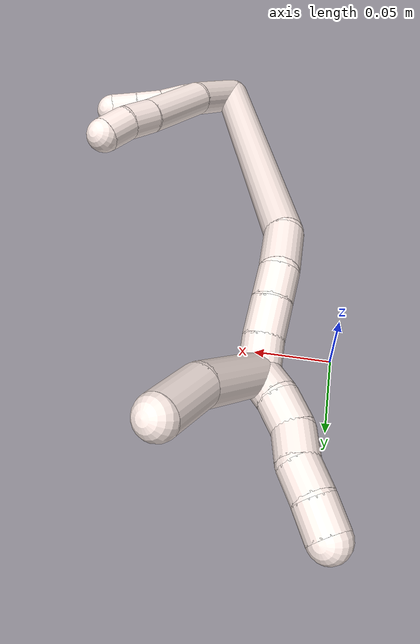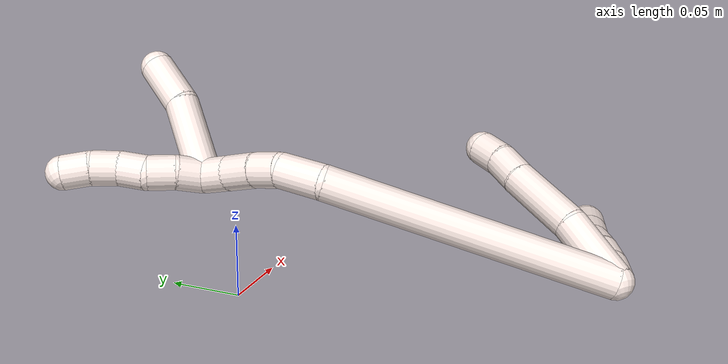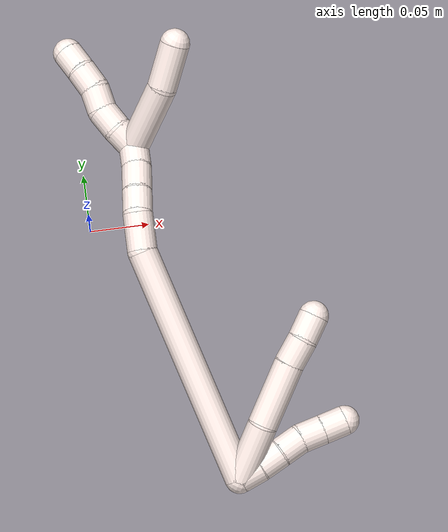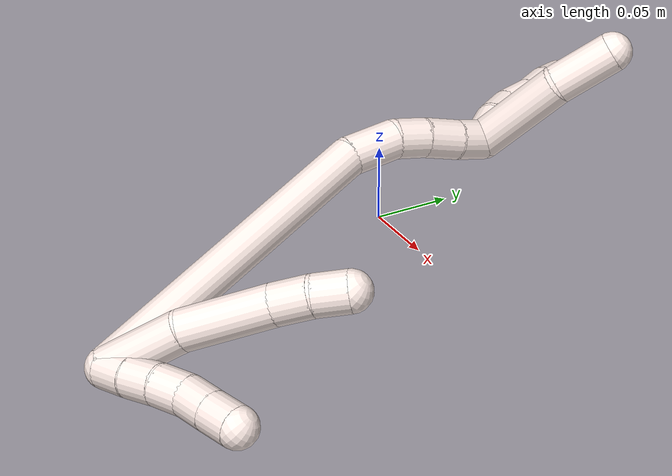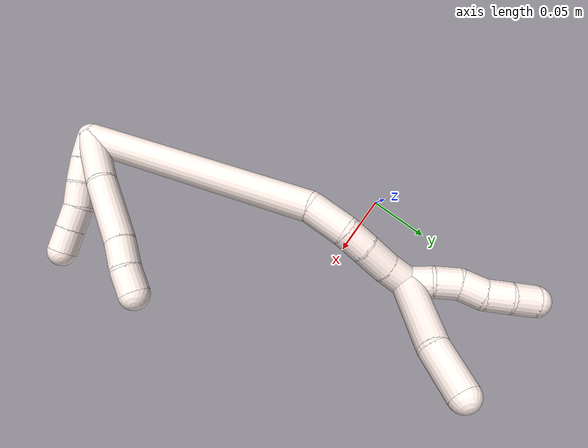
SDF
<sdf version="1.7">
 <world name="default">
  <model name="11">
   <static>0</static>
   <link name="11">
    <collision name="collision-cylinder-e_1_2_8">
     <pose>0.003539 0.006073 0.024458 -0.24337 0.139531 -0.01709</pose>
     <geometry><cylinder><radius>0.0125</radius><length>0.050897</length></cylinder></geometry>
     <surface>
      <friction><ode><mu>1.16</mu><mu2>1.16</mu2><slip1>0</slip1><slip2>0</slip2></ode></friction>
      <contact><ode><kp>1e+06</kp><kd>1</kd><max_vel>0</max_vel><min_depth>0.001</min_depth></ode></contact>
     </surface>
    </collision>
    <visual name="visual-cylinder-e_1_2_8">
     <pose>0.003539 0.006073 0.024458 -0.24337 0.139531 -0.01709</pose>
     <geometry><cylinder><radius>0.0125</radius><length>0.050897</length></cylinder></geometry>
     <material><ambient>1 0.933333 0.909804 1</ambient></material>
    </visual>
    <collision name="collision-cylinder-e_2_8_9">
     <pose>0.014576 0.022332 0.073317 -0.395477 0.276304 -0.0557</pose>
     <geometry><cylinder><radius>0.0125</radius><length>0.054968</length></cylinder></geometry>
     <surface>
      <friction><ode><mu>1.16</mu><mu2>1.16</mu2><slip1>0</slip1><slip2>0</slip2></ode></friction>
      <contact><ode><kp>1e+06</kp><kd>1</kd><max_vel>0</max_vel><min_depth>0.001</min_depth></ode></contact>
     </surface>
    </collision>
    <visual name="visual-cylinder-e_2_8_9">
     <pose>0.014576 0.022332 0.073317 -0.395477 0.276304 -0.0557</pose>
     <geometry><cylinder><radius>0.0125</radius><length>0.054968</length></cylinder></geometry>
     <material><ambient>1 0.933333 0.909804 1</ambient></material>
    </visual>
    <collision name="collision-cylinder-e_3_9_10">
     <pose>0.025933 0.035944 0.107973 -0.32234 0.342859 -0.05628</pose>
     <geometry><cylinder><radius>0.0125</radius><length>0.02296</length></cylinder></geometry>
     <surface>
      <friction><ode><mu>1.16</mu><mu2>1.16</mu2><slip1>0</slip1><slip2>0</slip2></ode></friction>
      <contact><ode><kp>1e+06</kp><kd>1</kd><max_vel>0</max_vel><min_depth>0.001</min_depth></ode></contact>
     </surface>
    </collision>
    <visual name="visual-cylinder-e_3_9_10">
     <pose>0.025933 0.035944 0.107973 -0.32234 0.342859 -0.05628</pose>
     <geometry><cylinder><radius>0.0125</radius><length>0.02296</length></cylinder></geometry>
     <material><ambient>1 0.933333 0.909804 1</ambient></material>
    </visual>
    <collision name="collision-cylinder-e_4_10_6">
     <pose>0.033894 0.044121 0.126754 -0.508495 0.397807 -0.104668</pose>
     <geometry><cylinder><radius>0.0125</radius><length>0.021175</length></cylinder></geometry>
     <surface>
      <friction><ode><mu>1.16</mu><mu2>1.16</mu2><slip1>0</slip1><slip2>0</slip2></ode></friction>
      <contact><ode><kp>1e+06</kp><kd>1</kd><max_vel>0</max_vel><min_depth>0.001</min_depth></ode></contact>
     </surface>
    </collision>
    <visual name="visual-cylinder-e_4_10_6">
     <pose>0.033894 0.044121 0.126754 -0.508495 0.397807 -0.104668</pose>
     <geometry><cylinder><radius>0.0125</radius><length>0.021175</length></cylinder></geometry>
     <material><ambient>1 0.933333 0.909804 1</ambient></material>
    </visual>
    <collision name="collision-cylinder-e_1_2_11">
     <pose>0.007244 -0.000424 0.006881 0.061566 0.810145 0.026405</pose>
     <geometry><cylinder><radius>0.0125</radius><length>0.02</length></cylinder></geometry>
     <surface>
      <friction><ode><mu>1.16</mu><mu2>1.16</mu2><slip1>0</slip1><slip2>0</slip2></ode></friction>
      <contact><ode><kp>1e+06</kp><kd>1</kd><max_vel>0</max_vel><min_depth>0.001</min_depth></ode></contact>
     </surface>
    </collision>
    <visual name="visual-cylinder-e_1_2_11">
     <pose>0.007244 -0.000424 0.006881 0.061566 0.810145 0.026405</pose>
     <geometry><cylinder><radius>0.0125</radius><length>0.02</length></cylinder></geometry>
     <material><ambient>1 0.933333 0.909804 1</ambient></material>
    </visual>
    <collision name="collision-cylinder-e_2_11_12">
     <pose>0.021515 -0.00036 0.020859 -0.068686 0.779251 -0.028213</pose>
     <geometry><cylinder><radius>0.0125</radius><length>0.02</length></cylinder></geometry>
     <surface>
      <friction><ode><mu>1.16</mu><mu2>1.16</mu2><slip1>0</slip1><slip2>0</slip2></ode></friction>
      <contact><ode><kp>1e+06</kp><kd>1</kd><max_vel>0</max_vel><min_depth>0.001</min_depth></ode></contact>
     </surface>
    </collision>
    <visual name="visual-cylinder-e_2_11_12">
     <pose>0.021515 -0.00036 0.020859 -0.068686 0.779251 -0.028213</pose>
     <geometry><cylinder><radius>0.0125</radius><length>0.02</length></cylinder></geometry>
     <material><ambient>1 0.933333 0.909804 1</ambient></material>
    </visual>
    <collision name="collision-cylinder-e_3_12_13">
     <pose>0.03612 0.001306 0.034375 -0.18153 0.859875 -0.083421</pose>
     <geometry><cylinder><radius>0.0125</radius><length>0.02</length></cylinder></geometry>
     <surface>
      <friction><ode><mu>1.16</mu><mu2>1.16</mu2><slip1>0</slip1><slip2>0</slip2></ode></friction>
      <contact><ode><kp>1e+06</kp><kd>1</kd><max_vel>0</max_vel><min_depth>0.001</min_depth></ode></contact>
     </surface>
    </collision>
    <visual name="visual-cylinder-e_3_12_13">
     <pose>0.03612 0.001306 0.034375 -0.18153 0.859875 -0.083421</pose>
     <geometry><cylinder><radius>0.0125</radius><length>0.02</length></cylinder></geometry>
     <material><ambient>1 0.933333 0.909804 1</ambient></material>
    </visual>
    <collision name="collision-cylinder-e_4_13_14">
     <pose>0.051994 0.001719 0.046325 0.137463 0.978339 0.073257</pose>
     <geometry><cylinder><radius>0.0125</radius><length>0.02</length></cylinder></geometry>
     <surface>
      <friction><ode><mu>1.16</mu><mu2>1.16</mu2><slip1>0</slip1><slip2>0</slip2></ode></friction>
      <contact><ode><kp>1e+06</kp><kd>1</kd><max_vel>0</max_vel><min_depth>0.001</min_depth></ode></contact>
     </surface>
    </collision>
    <visual name="visual-cylinder-e_4_13_14">
     <pose>0.051994 0.001719 0.046325 0.137463 0.978339 0.073257</pose>
     <geometry><cylinder><radius>0.0125</radius><length>0.02</length></cylinder></geometry>
     <material><ambient>1 0.933333 0.909804 1</ambient></material>
    </visual>
    <collision name="collision-cylinder-e_5_14_5">
     <pose>0.068475 0.000149 0.057543 0.140631 0.958896 0.073203</pose>
     <geometry><cylinder><radius>0.0125</radius><length>0.02</length></cylinder></geometry>
     <surface>
      <friction><ode><mu>1.16</mu><mu2>1.16</mu2><slip1>0</slip1><slip2>0</slip2></ode></friction>
      <contact><ode><kp>1e+06</kp><kd>1</kd><max_vel>0</max_vel><min_depth>0.001</min_depth></ode></contact>
     </surface>
    </collision>
    <visual name="visual-cylinder-e_5_14_5">
     <pose>0.068475 0.000149 0.057543 0.140631 0.958896 0.073203</pose>
     <geometry><cylinder><radius>0.0125</radius><length>0.02</length></cylinder></geometry>
     <material><ambient>1 0.933333 0.909804 1</ambient></material>
    </visual>
    <collision name="collision-cylinder-e_1_2_15">
     <pose>-0.035716 0.075169 0.058784 -0.907117 -0.358138 0.176009</pose>
     <geometry><cylinder><radius>0.0125</radius><length>0.20378</length></cylinder></geometry>
     <surface>
      <friction><ode><mu>1.16</mu><mu2>1.16</mu2><slip1>0</slip1><slip2>0</slip2></ode></friction>
      <contact><ode><kp>1e+06</kp><kd>1</kd><max_vel>0</max_vel><min_depth>0.001</min_depth></ode></contact>
     </surface>
    </collision>
    <visual name="visual-cylinder-e_1_2_15">
     <pose>-0.035716 0.075169 0.058784 -0.907117 -0.358138 0.176009</pose>
     <geometry><cylinder><radius>0.0125</radius><length>0.20378</length></cylinder></geometry>
     <material><ambient>1 0.933333 0.909804 1</ambient></material>
    </visual>
    <collision name="collision-cylinder-e_2_15_16">
     <pose>-0.071769 0.162758 0.127511 -0.89564 -0.02122 0.010194</pose>
     <geometry><cylinder><radius>0.0125</radius><length>0.031826</length></cylinder></geometry>
     <surface>
      <friction><ode><mu>1.16</mu><mu2>1.16</mu2><slip1>0</slip1><slip2>0</slip2></ode></friction>
      <contact><ode><kp>1e+06</kp><kd>1</kd><max_vel>0</max_vel><min_depth>0.001</min_depth></ode></contact>
     </surface>
    </collision>
    <visual name="visual-cylinder-e_2_15_16">
     <pose>-0.071769 0.162758 0.127511 -0.89564 -0.02122 0.010194</pose>
     <geometry><cylinder><radius>0.0125</radius><length>0.031826</length></cylinder></geometry>
     <material><ambient>1 0.933333 0.909804 1</ambient></material>
    </visual>
    <collision name="collision-cylinder-e_3_16_17">
     <pose>-0.069963 0.184017 0.142074 -1.08928 0.211708 -0.128547</pose>
     <geometry><cylinder><radius>0.0125</radius><length>0.020404</length></cylinder></geometry>
     <surface>
      <friction><ode><mu>1.16</mu><mu2>1.16</mu2><slip1>0</slip1><slip2>0</slip2></ode></friction>
      <contact><ode><kp>1e+06</kp><kd>1</kd><max_vel>0</max_vel><min_depth>0.001</min_depth></ode></contact>
     </surface>
    </collision>
    <visual name="visual-cylinder-e_3_16_17">
     <pose>-0.069963 0.184017 0.142074 -1.08928 0.211708 -0.128547</pose>
     <geometry><cylinder><radius>0.0125</radius><length>0.020404</length></cylinder></geometry>
     <material><ambient>1 0.933333 0.909804 1</ambient></material>
    </visual>
    <collision name="collision-cylinder-e_4_17_18">
     <pose>-0.064756 0.203161 0.15094 -1.17988 0.268179 -0.180132</pose>
     <geometry><cylinder><radius>0.0125</radius><length>0.023116</length></cylinder></geometry>
     <surface>
      <friction><ode><mu>1.16</mu><mu2>1.16</mu2><slip1>0</slip1><slip2>0</slip2></ode></friction>
      <contact><ode><kp>1e+06</kp><kd>1</kd><max_vel>0</max_vel><min_depth>0.001</min_depth></ode></contact>
     </surface>
    </collision>
    <visual name="visual-cylinder-e_4_17_18">
     <pose>-0.064756 0.203161 0.15094 -1.17988 0.268179 -0.180132</pose>
     <geometry><cylinder><radius>0.0125</radius><length>0.023116</length></cylinder></geometry>
     <material><ambient>1 0.933333 0.909804 1</ambient></material>
    </visual>
    <collision name="collision-cylinder-e_5_18_1">
     <pose>-0.059894 0.22306 0.158878 -1.20356 0.173351 -0.119207</pose>
     <geometry><cylinder><radius>0.0125</radius><length>0.020874</length></cylinder></geometry>
     <surface>
      <friction><ode><mu>1.16</mu><mu2>1.16</mu2><slip1>0</slip1><slip2>0</slip2></ode></friction>
      <contact><ode><kp>1e+06</kp><kd>1</kd><max_vel>0</max_vel><min_depth>0.001</min_depth></ode></contact>
     </surface>
    </collision>
    <visual name="visual-cylinder-e_5_18_1">
     <pose>-0.059894 0.22306 0.158878 -1.20356 0.173351 -0.119207</pose>
     <geometry><cylinder><radius>0.0125</radius><length>0.020874</length></cylinder></geometry>
     <material><ambient>1 0.933333 0.909804 1</ambient></material>
    </visual>
    <collision name="collision-cylinder-e_1_1_19">
     <pose>-0.056857 0.233537 0.193098 -0.028883 0.04047 -0.000585</pose>
     <geometry><cylinder><radius>0.0125</radius><length>0.061134</length></cylinder></geometry>
     <surface>
      <friction><ode><mu>1.16</mu><mu2>1.16</mu2><slip1>0</slip1><slip2>0</slip2></ode></friction>
      <contact><ode><kp>1e+06</kp><kd>1</kd><max_vel>0</max_vel><min_depth>0.001</min_depth></ode></contact>
     </surface>
    </collision>
    <visual name="visual-cylinder-e_1_1_19">
     <pose>-0.056857 0.233537 0.193098 -0.028883 0.04047 -0.000585</pose>
     <geometry><cylinder><radius>0.0125</radius><length>0.061134</length></cylinder></geometry>
     <material><ambient>1 0.933333 0.909804 1</ambient></material>
    </visual>
    <collision name="collision-cylinder-e_2_19_4">
     <pose>-0.054602 0.239942 0.242231 -0.28858 0.052378 -0.007612</pose>
     <geometry><cylinder><radius>0.0125</radius><length>0.038866</length></cylinder></geometry>
     <surface>
      <friction><ode><mu>1.16</mu><mu2>1.16</mu2><slip1>0</slip1><slip2>0</slip2></ode></friction>
      <contact><ode><kp>1e+06</kp><kd>1</kd><max_vel>0</max_vel><min_depth>0.001</min_depth></ode></contact>
     </surface>
    </collision>
    <visual name="visual-cylinder-e_2_19_4">
     <pose>-0.054602 0.239942 0.242231 -0.28858 0.052378 -0.007612</pose>
     <geometry><cylinder><radius>0.0125</radius><length>0.038866</length></cylinder></geometry>
     <material><ambient>1 0.933333 0.909804 1</ambient></material>
    </visual>
    <collision name="collision-cylinder-e_1_1_20">
     <pose>-0.063806 0.24031 0.165529 -1.20186 -0.608104 0.423739</pose>
     <geometry><cylinder><radius>0.0125</radius><length>0.02</length></cylinder></geometry>
     <surface>
      <friction><ode><mu>1.16</mu><mu2>1.16</mu2><slip1>0</slip1><slip2>0</slip2></ode></friction>
      <contact><ode><kp>1e+06</kp><kd>1</kd><max_vel>0</max_vel><min_depth>0.001</min_depth></ode></contact>
     </surface>
    </collision>
    <visual name="visual-cylinder-e_1_1_20">
     <pose>-0.063806 0.24031 0.165529 -1.20186 -0.608104 0.423739</pose>
     <geometry><cylinder><radius>0.0125</radius><length>0.02</length></cylinder></geometry>
     <material><ambient>1 0.933333 0.909804 1</ambient></material>
    </visual>
    <collision name="collision-cylinder-e_2_20_21">
     <pose>-0.0735 0.256818 0.170897 -1.30515 -0.409355 0.314681</pose>
     <geometry><cylinder><radius>0.0125</radius><length>0.02</length></cylinder></geometry>
     <surface>
      <friction><ode><mu>1.16</mu><mu2>1.16</mu2><slip1>0</slip1><slip2>0</slip2></ode></friction>
      <contact><ode><kp>1e+06</kp><kd>1</kd><max_vel>0</max_vel><min_depth>0.001</min_depth></ode></contact>
     </surface>
    </collision>
    <visual name="visual-cylinder-e_2_20_21">
     <pose>-0.0735 0.256818 0.170897 -1.30515 -0.409355 0.314681</pose>
     <geometry><cylinder><radius>0.0125</radius><length>0.02</length></cylinder></geometry>
     <material><ambient>1 0.933333 0.909804 1</ambient></material>
    </visual>
    <collision name="collision-cylinder-e_3_21_22">
     <pose>-0.079199 0.274177 0.178272 -1.04233 -0.172804 0.099374</pose>
     <geometry><cylinder><radius>0.0125</radius><length>0.02</length></cylinder></geometry>
     <surface>
      <friction><ode><mu>1.16</mu><mu2>1.16</mu2><slip1>0</slip1><slip2>0</slip2></ode></friction>
      <contact><ode><kp>1e+06</kp><kd>1</kd><max_vel>0</max_vel><min_depth>0.001</min_depth></ode></contact>
     </surface>
    </collision>
    <visual name="visual-cylinder-e_3_21_22">
     <pose>-0.079199 0.274177 0.178272 -1.04233 -0.172804 0.099374</pose>
     <geometry><cylinder><radius>0.0125</radius><length>0.02</length></cylinder></geometry>
     <material><ambient>1 0.933333 0.909804 1</ambient></material>
    </visual>
    <collision name="collision-cylinder-e_4_22_23">
     <pose>-0.084585 0.291538 0.186096 -1.25866 -0.375418 0.27485</pose>
     <geometry><cylinder><radius>0.0125</radius><length>0.02</length></cylinder></geometry>
     <surface>
      <friction><ode><mu>1.16</mu><mu2>1.16</mu2><slip1>0</slip1><slip2>0</slip2></ode></friction>
      <contact><ode><kp>1e+06</kp><kd>1</kd><max_vel>0</max_vel><min_depth>0.001</min_depth></ode></contact>
     </surface>
    </collision>
    <visual name="visual-cylinder-e_4_22_23">
     <pose>-0.084585 0.291538 0.186096 -1.25866 -0.375418 0.27485</pose>
     <geometry><cylinder><radius>0.0125</radius><length>0.02</length></cylinder></geometry>
     <material><ambient>1 0.933333 0.909804 1</ambient></material>
    </visual>
    <collision name="collision-cylinder-e_5_23_3">
     <pose>-0.090834 0.309928 0.190504 -1.40964 -0.261199 0.222515</pose>
     <geometry><cylinder><radius>0.0125</radius><length>0.02</length></cylinder></geometry>
     <surface>
      <friction><ode><mu>1.16</mu><mu2>1.16</mu2><slip1>0</slip1><slip2>0</slip2></ode></friction>
      <contact><ode><kp>1e+06</kp><kd>1</kd><max_vel>0</max_vel><min_depth>0.001</min_depth></ode></contact>
     </surface>
    </collision>
    <visual name="visual-cylinder-e_5_23_3">
     <pose>-0.090834 0.309928 0.190504 -1.40964 -0.261199 0.222515</pose>
     <geometry><cylinder><radius>0.0125</radius><length>0.02</length></cylinder></geometry>
     <material><ambient>1 0.933333 0.909804 1</ambient></material>
    </visual>
    <collision name="collision-sphere-3">
     <pose>-0.093417 0.319463 0.192054 0 -0 0</pose>
     <geometry><sphere><radius>0.0125</radius></sphere></geometry>
     <surface>
      <friction><ode><mu>1.16</mu><mu2>1.16</mu2><slip1>0</slip1><slip2>0</slip2></ode></friction>
      <contact><ode><kp>1e+06</kp><kd>1</kd><max_vel>0</max_vel><min_depth>0.001</min_depth></ode></contact>
     </surface>
    </collision>
    <visual name="visual-sphere-3">
     <pose>-0.093417 0.319463 0.192054 0 -0 0</pose>
     <geometry><sphere><radius>0.0125</radius></sphere></geometry>
     <material><ambient>1 0.933333 0.909804 1</ambient></material>
    </visual>
    <collision name="collision-sphere-23">
     <pose>-0.088252 0.300392 0.188953 0 -0 0</pose>
     <geometry><sphere><radius>0.0125</radius></sphere></geometry>
     <surface>
      <friction><ode><mu>1.16</mu><mu2>1.16</mu2><slip1>0</slip1><slip2>0</slip2></ode></friction>
      <contact><ode><kp>1e+06</kp><kd>1</kd><max_vel>0</max_vel><min_depth>0.001</min_depth></ode></contact>
     </surface>
    </collision>
    <visual name="visual-sphere-23">
     <pose>-0.088252 0.300392 0.188953 0 -0 0</pose>
     <geometry><sphere><radius>0.0125</radius></sphere></geometry>
     <material><ambient>1 0.933333 0.909804 1</ambient></material>
    </visual>
    <collision name="collision-sphere-22">
     <pose>-0.080919 0.282684 0.183239 0 -0 0</pose>
     <geometry><sphere><radius>0.0125</radius></sphere></geometry>
     <surface>
      <friction><ode><mu>1.16</mu><mu2>1.16</mu2><slip1>0</slip1><slip2>0</slip2></ode></friction>
      <contact><ode><kp>1e+06</kp><kd>1</kd><max_vel>0</max_vel><min_depth>0.001</min_depth></ode></contact>
     </surface>
    </collision>
    <visual name="visual-sphere-22">
     <pose>-0.080919 0.282684 0.183239 0 -0 0</pose>
     <geometry><sphere><radius>0.0125</radius></sphere></geometry>
     <material><ambient>1 0.933333 0.909804 1</ambient></material>
    </visual>
    <collision name="collision-sphere-21">
     <pose>-0.07748 0.26567 0.173305 0 -0 0</pose>
     <geometry><sphere><radius>0.0125</radius></sphere></geometry>
     <surface>
      <friction><ode><mu>1.16</mu><mu2>1.16</mu2><slip1>0</slip1><slip2>0</slip2></ode></friction>
      <contact><ode><kp>1e+06</kp><kd>1</kd><max_vel>0</max_vel><min_depth>0.001</min_depth></ode></contact>
     </surface>
    </collision>
    <visual name="visual-sphere-21">
     <pose>-0.07748 0.26567 0.173305 0 -0 0</pose>
     <geometry><sphere><radius>0.0125</radius></sphere></geometry>
     <material><ambient>1 0.933333 0.909804 1</ambient></material>
    </visual>
    <collision name="collision-sphere-20">
     <pose>-0.06952 0.247966 0.168488 0 -0 0</pose>
     <geometry><sphere><radius>0.0125</radius></sphere></geometry>
     <surface>
      <friction><ode><mu>1.16</mu><mu2>1.16</mu2><slip1>0</slip1><slip2>0</slip2></ode></friction>
      <contact><ode><kp>1e+06</kp><kd>1</kd><max_vel>0</max_vel><min_depth>0.001</min_depth></ode></contact>
     </surface>
    </collision>
    <visual name="visual-sphere-20">
     <pose>-0.06952 0.247966 0.168488 0 -0 0</pose>
     <geometry><sphere><radius>0.0125</radius></sphere></geometry>
     <material><ambient>1 0.933333 0.909804 1</ambient></material>
    </visual>
    <collision name="collision-sphere-4">
     <pose>-0.053585 0.245465 0.260835 0 -0 0</pose>
     <geometry><sphere><radius>0.0125</radius></sphere></geometry>
     <surface>
      <friction><ode><mu>1.16</mu><mu2>1.16</mu2><slip1>0</slip1><slip2>0</slip2></ode></friction>
      <contact><ode><kp>1e+06</kp><kd>1</kd><max_vel>0</max_vel><min_depth>0.001</min_depth></ode></contact>
     </surface>
    </collision>
    <visual name="visual-sphere-4">
     <pose>-0.053585 0.245465 0.260835 0 -0 0</pose>
     <geometry><sphere><radius>0.0125</radius></sphere></geometry>
     <material><ambient>1 0.933333 0.909804 1</ambient></material>
    </visual>
    <collision name="collision-sphere-11">
     <pose>0.014488 -0.000848 0.013762 0 -0 0</pose>
     <geometry><sphere><radius>0.0125</radius></sphere></geometry>
     <surface>
      <friction><ode><mu>1.16</mu><mu2>1.16</mu2><slip1>0</slip1><slip2>0</slip2></ode></friction>
      <contact><ode><kp>1e+06</kp><kd>1</kd><max_vel>0</max_vel><min_depth>0.001</min_depth></ode></contact>
     </surface>
    </collision>
    <visual name="visual-sphere-11">
     <pose>0.014488 -0.000848 0.013762 0 -0 0</pose>
     <geometry><sphere><radius>0.0125</radius></sphere></geometry>
     <material><ambient>1 0.933333 0.909804 1</ambient></material>
    </visual>
    <collision name="collision-sphere-6">
     <pose>0.037996 0.048873 0.13528 0 -0 0</pose>
     <geometry><sphere><radius>0.0125</radius></sphere></geometry>
     <surface>
      <friction><ode><mu>1.16</mu><mu2>1.16</mu2><slip1>0</slip1><slip2>0</slip2></ode></friction>
      <contact><ode><kp>1e+06</kp><kd>1</kd><max_vel>0</max_vel><min_depth>0.001</min_depth></ode></contact>
     </surface>
    </collision>
    <visual name="visual-sphere-6">
     <pose>0.037996 0.048873 0.13528 0 -0 0</pose>
     <geometry><sphere><radius>0.0125</radius></sphere></geometry>
     <material><ambient>1 0.933333 0.909804 1</ambient></material>
    </visual>
    <collision name="collision-sphere-10">
     <pose>0.029793 0.039369 0.118228 0 -0 0</pose>
     <geometry><sphere><radius>0.0125</radius></sphere></geometry>
     <surface>
      <friction><ode><mu>1.16</mu><mu2>1.16</mu2><slip1>0</slip1><slip2>0</slip2></ode></friction>
      <contact><ode><kp>1e+06</kp><kd>1</kd><max_vel>0</max_vel><min_depth>0.001</min_depth></ode></contact>
     </surface>
    </collision>
    <visual name="visual-sphere-10">
     <pose>0.029793 0.039369 0.118228 0 -0 0</pose>
     <geometry><sphere><radius>0.0125</radius></sphere></geometry>
     <material><ambient>1 0.933333 0.909804 1</ambient></material>
    </visual>
    <collision name="collision-sphere-9">
     <pose>0.022074 0.032519 0.097718 0 -0 0</pose>
     <geometry><sphere><radius>0.0125</radius></sphere></geometry>
     <surface>
      <friction><ode><mu>1.16</mu><mu2>1.16</mu2><slip1>0</slip1><slip2>0</slip2></ode></friction>
      <contact><ode><kp>1e+06</kp><kd>1</kd><max_vel>0</max_vel><min_depth>0.001</min_depth></ode></contact>
     </surface>
    </collision>
    <visual name="visual-sphere-9">
     <pose>0.022074 0.032519 0.097718 0 -0 0</pose>
     <geometry><sphere><radius>0.0125</radius></sphere></geometry>
     <material><ambient>1 0.933333 0.909804 1</ambient></material>
    </visual>
    <collision name="collision-sphere-2">
     <geometry><sphere><radius>0.0125</radius></sphere></geometry>
     <surface>
      <friction><ode><mu>1.16</mu><mu2>1.16</mu2><slip1>0</slip1><slip2>0</slip2></ode></friction>
      <contact><ode><kp>1e+06</kp><kd>1</kd><max_vel>0</max_vel><min_depth>0.001</min_depth></ode></contact>
     </surface>
    </collision>
    <visual name="visual-sphere-2">
     <geometry><sphere><radius>0.0125</radius></sphere></geometry>
     <material><ambient>1 0.933333 0.909804 1</ambient></material>
    </visual>
    <collision name="collision-sphere-19">
     <pose>-0.05562 0.234419 0.223628 0 -0 0</pose>
     <geometry><sphere><radius>0.0125</radius></sphere></geometry>
     <surface>
      <friction><ode><mu>1.16</mu><mu2>1.16</mu2><slip1>0</slip1><slip2>0</slip2></ode></friction>
      <contact><ode><kp>1e+06</kp><kd>1</kd><max_vel>0</max_vel><min_depth>0.001</min_depth></ode></contact>
     </surface>
    </collision>
    <visual name="visual-sphere-19">
     <pose>-0.05562 0.234419 0.223628 0 -0 0</pose>
     <geometry><sphere><radius>0.0125</radius></sphere></geometry>
     <material><ambient>1 0.933333 0.909804 1</ambient></material>
    </visual>
    <collision name="collision-sphere-8">
     <pose>0.007079 0.012146 0.048917 0 -0 0</pose>
     <geometry><sphere><radius>0.0125</radius></sphere></geometry>
     <surface>
      <friction><ode><mu>1.16</mu><mu2>1.16</mu2><slip1>0</slip1><slip2>0</slip2></ode></friction>
      <contact><ode><kp>1e+06</kp><kd>1</kd><max_vel>0</max_vel><min_depth>0.001</min_depth></ode></contact>
     </surface>
    </collision>
    <visual name="visual-sphere-8">
     <pose>0.007079 0.012146 0.048917 0 -0 0</pose>
     <geometry><sphere><radius>0.0125</radius></sphere></geometry>
     <material><ambient>1 0.933333 0.909804 1</ambient></material>
    </visual>
    <collision name="collision-sphere-12">
     <pose>0.028543 0.000128 0.027957 0 -0 0</pose>
     <geometry><sphere><radius>0.0125</radius></sphere></geometry>
     <surface>
      <friction><ode><mu>1.16</mu><mu2>1.16</mu2><slip1>0</slip1><slip2>0</slip2></ode></friction>
      <contact><ode><kp>1e+06</kp><kd>1</kd><max_vel>0</max_vel><min_depth>0.001</min_depth></ode></contact>
     </surface>
    </collision>
    <visual name="visual-sphere-12">
     <pose>0.028543 0.000128 0.027957 0 -0 0</pose>
     <geometry><sphere><radius>0.0125</radius></sphere></geometry>
     <material><ambient>1 0.933333 0.909804 1</ambient></material>
    </visual>
    <collision name="collision-sphere-13">
     <pose>0.043698 0.002484 0.040793 0 -0 0</pose>
     <geometry><sphere><radius>0.0125</radius></sphere></geometry>
     <surface>
      <friction><ode><mu>1.16</mu><mu2>1.16</mu2><slip1>0</slip1><slip2>0</slip2></ode></friction>
      <contact><ode><kp>1e+06</kp><kd>1</kd><max_vel>0</max_vel><min_depth>0.001</min_depth></ode></contact>
     </surface>
    </collision>
    <visual name="visual-sphere-13">
     <pose>0.043698 0.002484 0.040793 0 -0 0</pose>
     <geometry><sphere><radius>0.0125</radius></sphere></geometry>
     <material><ambient>1 0.933333 0.909804 1</ambient></material>
    </visual>
    <collision name="collision-sphere-14">
     <pose>0.060289 0.000954 0.051856 0 -0 0</pose>
     <geometry><sphere><radius>0.0125</radius></sphere></geometry>
     <surface>
      <friction><ode><mu>1.16</mu><mu2>1.16</mu2><slip1>0</slip1><slip2>0</slip2></ode></friction>
      <contact><ode><kp>1e+06</kp><kd>1</kd><max_vel>0</max_vel><min_depth>0.001</min_depth></ode></contact>
     </surface>
    </collision>
    <visual name="visual-sphere-14">
     <pose>0.060289 0.000954 0.051856 0 -0 0</pose>
     <geometry><sphere><radius>0.0125</radius></sphere></geometry>
     <material><ambient>1 0.933333 0.909804 1</ambient></material>
    </visual>
    <collision name="collision-sphere-5">
     <pose>0.07666 -0.000656 0.063231 0 -0 0</pose>
     <geometry><sphere><radius>0.0125</radius></sphere></geometry>
     <surface>
      <friction><ode><mu>1.16</mu><mu2>1.16</mu2><slip1>0</slip1><slip2>0</slip2></ode></friction>
      <contact><ode><kp>1e+06</kp><kd>1</kd><max_vel>0</max_vel><min_depth>0.001</min_depth></ode></contact>
     </surface>
    </collision>
    <visual name="visual-sphere-5">
     <pose>0.07666 -0.000656 0.063231 0 -0 0</pose>
     <geometry><sphere><radius>0.0125</radius></sphere></geometry>
     <material><ambient>1 0.933333 0.909804 1</ambient></material>
    </visual>
    <collision name="collision-sphere-15">
     <pose>-0.071431 0.150339 0.117567 0 -0 0</pose>
     <geometry><sphere><radius>0.0125</radius></sphere></geometry>
     <surface>
      <friction><ode><mu>1.16</mu><mu2>1.16</mu2><slip1>0</slip1><slip2>0</slip2></ode></friction>
      <contact><ode><kp>1e+06</kp><kd>1</kd><max_vel>0</max_vel><min_depth>0.001</min_depth></ode></contact>
     </surface>
    </collision>
    <visual name="visual-sphere-15">
     <pose>-0.071431 0.150339 0.117567 0 -0 0</pose>
     <geometry><sphere><radius>0.0125</radius></sphere></geometry>
     <material><ambient>1 0.933333 0.909804 1</ambient></material>
    </visual>
    <collision name="collision-sphere-16">
     <pose>-0.072106 0.175177 0.137455 0 -0 0</pose>
     <geometry><sphere><radius>0.0125</radius></sphere></geometry>
     <surface>
      <friction><ode><mu>1.16</mu><mu2>1.16</mu2><slip1>0</slip1><slip2>0</slip2></ode></friction>
      <contact><ode><kp>1e+06</kp><kd>1</kd><max_vel>0</max_vel><min_depth>0.001</min_depth></ode></contact>
     </surface>
    </collision>
    <visual name="visual-sphere-16">
     <pose>-0.072106 0.175177 0.137455 0 -0 0</pose>
     <geometry><sphere><radius>0.0125</radius></sphere></geometry>
     <material><ambient>1 0.933333 0.909804 1</ambient></material>
    </visual>
    <collision name="collision-sphere-17">
     <pose>-0.067819 0.192857 0.146693 0 -0 0</pose>
     <geometry><sphere><radius>0.0125</radius></sphere></geometry>
     <surface>
      <friction><ode><mu>1.16</mu><mu2>1.16</mu2><slip1>0</slip1><slip2>0</slip2></ode></friction>
      <contact><ode><kp>1e+06</kp><kd>1</kd><max_vel>0</max_vel><min_depth>0.001</min_depth></ode></contact>
     </surface>
    </collision>
    <visual name="visual-sphere-17">
     <pose>-0.067819 0.192857 0.146693 0 -0 0</pose>
     <geometry><sphere><radius>0.0125</radius></sphere></geometry>
     <material><ambient>1 0.933333 0.909804 1</ambient></material>
    </visual>
    <collision name="collision-sphere-18">
     <pose>-0.061694 0.213465 0.155187 0 -0 0</pose>
     <geometry><sphere><radius>0.0125</radius></sphere></geometry>
     <surface>
      <friction><ode><mu>1.16</mu><mu2>1.16</mu2><slip1>0</slip1><slip2>0</slip2></ode></friction>
      <contact><ode><kp>1e+06</kp><kd>1</kd><max_vel>0</max_vel><min_depth>0.001</min_depth></ode></contact>
     </surface>
    </collision>
    <visual name="visual-sphere-18">
     <pose>-0.061694 0.213465 0.155187 0 -0 0</pose>
     <geometry><sphere><radius>0.0125</radius></sphere></geometry>
     <material><ambient>1 0.933333 0.909804 1</ambient></material>
    </visual>
    <collision name="collision-sphere-1">
     <pose>-0.058093 0.232655 0.162569 0 -0 0</pose>
     <geometry><sphere><radius>0.0125</radius></sphere></geometry>
     <surface>
      <friction><ode><mu>1.16</mu><mu2>1.16</mu2><slip1>0</slip1><slip2>0</slip2></ode></friction>
      <contact><ode><kp>1e+06</kp><kd>1</kd><max_vel>0</max_vel><min_depth>0.001</min_depth></ode></contact>
     </surface>
    </collision>
    <visual name="visual-sphere-1">
     <pose>-0.058093 0.232655 0.162569 0 -0 0</pose>
     <geometry><sphere><radius>0.0125</radius></sphere></geometry>
     <material><ambient>1 0.933333 0.909804 1</ambient></material>
    </visual>
    <inertial>
     <pose>-0.028229 0.117343 0.104726 0 -0 0</pose>
     <mass>0.75</mass>
     <inertia>
      <ixx>0.000855</ixx>
      <ixy>0</ixy>
      <ixz>0</ixz>
      <iyy>0.000686</iyy>
      <iyz>0</iyz>
      <izz>-0.000277</izz>
     </inertia>
    </inertial>
   </link>
   <pose>0.095656 -0.230962 0.012512 -0.526551 0.578996 0.054228</pose>
  </model>
 </world>
</sdf>
